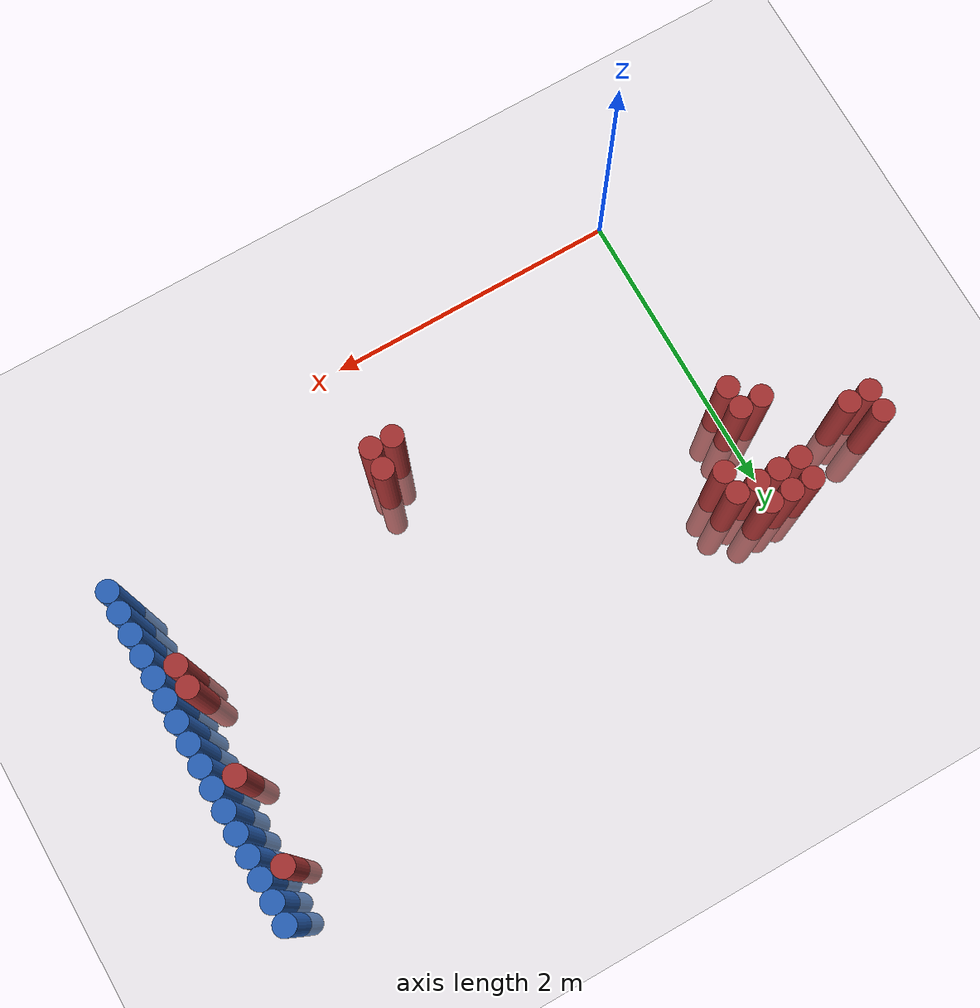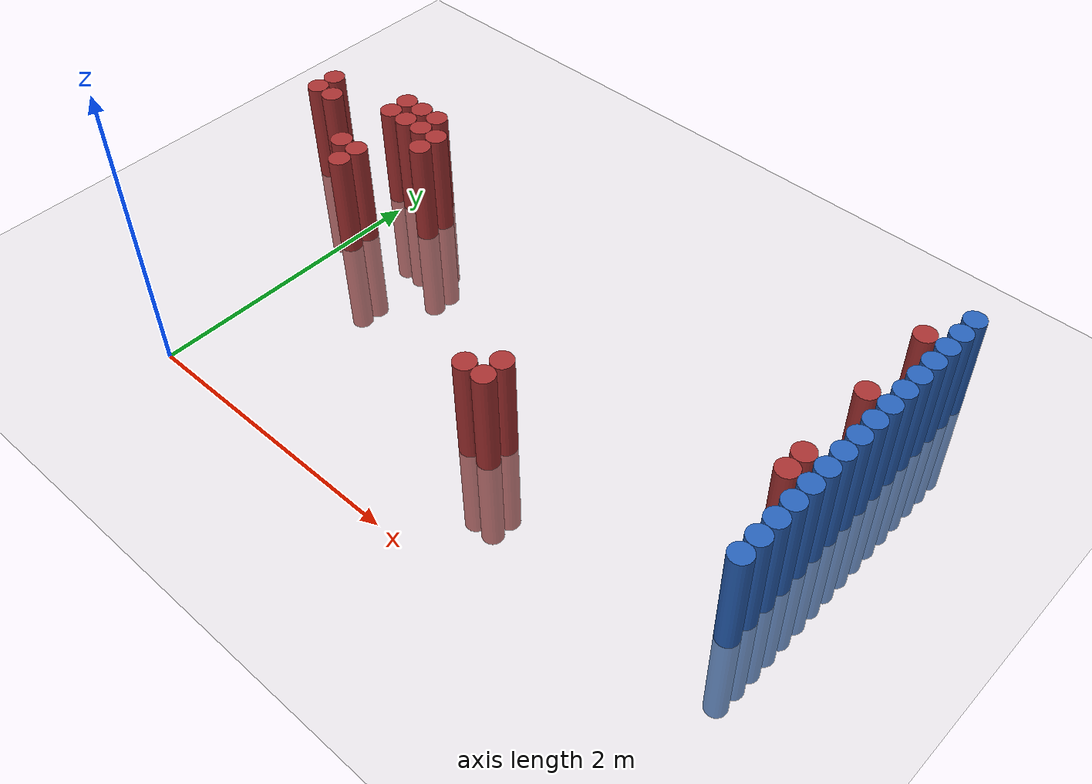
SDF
<sdf version="1.6">
 <world name="default">
  <model name="ground_plane">
   <static>1</static>
   <link name="link">
    <collision name="collision">
     <geometry><plane><normal>0 0 1</normal><size>100 100</size></plane></geometry>
     <surface><friction><ode><mu>100</mu><mu2>50</mu2></ode></friction></surface>
    </collision>
    <visual name="visual">
     <cast_shadows>0</cast_shadows>
     <geometry><plane><normal>0 0 1</normal><size>100 100</size></plane></geometry>
     <material>
      <script><uri>file://media/materials/scripts/gazebo.material</uri><name>Gazebo/Grey</name></script>
     </material>
    </visual>
   </link>
  </model>
  <model name="unit_cylinder_126">
   <static>1</static>
   <pose>3.925000 0.925000 0.000000 0.000000 0.000000 0.000000</pose>
   <link name="link">
    <inertial>
     <mass>1</mass>
     <inertia><ixx>0.145833</ixx><ixy>0</ixy><ixz>0</ixz><iyy>0.145833</iyy><iyz>0</iyz><izz>0.125</izz></inertia>
    </inertial>
    <collision name="collision">
     <geometry><cylinder><radius>0.075000</radius><length>1.5</length></cylinder></geometry>
    </collision>
    <visual name="visual">
     <geometry><cylinder><radius>0.075000</radius><length>1.5</length></cylinder></geometry>
     <material>
      <ambient>0.152000 0.379000 0.720000 1</ambient>
      <diffuse>0.152000 0.379000 0.720000 1</diffuse>
     </material>
     <material>
      <script><name>Gazebo/Grey</name><uri>file://media/materials/scripts/gazebo.material</uri></script>
     </material>
    </visual>
   </link>
  </model>
  <model name="unit_cylinder_128">
   <static>1</static>
   <pose>3.925000 1.075000 0.000000 0.000000 0.000000 0.000000</pose>
   <link name="link">
    <inertial>
     <mass>1</mass>
     <inertia><ixx>0.145833</ixx><ixy>0</ixy><ixz>0</ixz><iyy>0.145833</iyy><iyz>0</iyz><izz>0.125</izz></inertia>
    </inertial>
    <collision name="collision">
     <geometry><cylinder><radius>0.075000</radius><length>1.5</length></cylinder></geometry>
    </collision>
    <visual name="visual">
     <geometry><cylinder><radius>0.075000</radius><length>1.5</length></cylinder></geometry>
     <material>
      <ambient>0.152000 0.379000 0.720000 1</ambient>
      <diffuse>0.152000 0.379000 0.720000 1</diffuse>
     </material>
     <material>
      <script><name>Gazebo/Grey</name><uri>file://media/materials/scripts/gazebo.material</uri></script>
     </material>
    </visual>
   </link>
  </model>
  <model name="unit_cylinder_130">
   <static>1</static>
   <pose>3.925000 1.225000 0.000000 0.000000 0.000000 0.000000</pose>
   <link name="link">
    <inertial>
     <mass>1</mass>
     <inertia><ixx>0.145833</ixx><ixy>0</ixy><ixz>0</ixz><iyy>0.145833</iyy><iyz>0</iyz><izz>0.125</izz></inertia>
    </inertial>
    <collision name="collision">
     <geometry><cylinder><radius>0.075000</radius><length>1.5</length></cylinder></geometry>
    </collision>
    <visual name="visual">
     <geometry><cylinder><radius>0.075000</radius><length>1.5</length></cylinder></geometry>
     <material>
      <ambient>0.152000 0.379000 0.720000 1</ambient>
      <diffuse>0.152000 0.379000 0.720000 1</diffuse>
     </material>
     <material>
      <script><name>Gazebo/Grey</name><uri>file://media/materials/scripts/gazebo.material</uri></script>
     </material>
    </visual>
   </link>
  </model>
  <model name="unit_cylinder_132">
   <static>1</static>
   <pose>3.925000 1.375000 0.000000 0.000000 0.000000 0.000000</pose>
   <link name="link">
    <inertial>
     <mass>1</mass>
     <inertia><ixx>0.145833</ixx><ixy>0</ixy><ixz>0</ixz><iyy>0.145833</iyy><iyz>0</iyz><izz>0.125</izz></inertia>
    </inertial>
    <collision name="collision">
     <geometry><cylinder><radius>0.075000</radius><length>1.5</length></cylinder></geometry>
    </collision>
    <visual name="visual">
     <geometry><cylinder><radius>0.075000</radius><length>1.5</length></cylinder></geometry>
     <material>
      <ambient>0.152000 0.379000 0.720000 1</ambient>
      <diffuse>0.152000 0.379000 0.720000 1</diffuse>
     </material>
     <material>
      <script><name>Gazebo/Grey</name><uri>file://media/materials/scripts/gazebo.material</uri></script>
     </material>
    </visual>
   </link>
  </model>
  <model name="unit_cylinder_134">
   <static>1</static>
   <pose>3.925000 1.525000 0.000000 0.000000 0.000000 0.000000</pose>
   <link name="link">
    <inertial>
     <mass>1</mass>
     <inertia><ixx>0.145833</ixx><ixy>0</ixy><ixz>0</ixz><iyy>0.145833</iyy><iyz>0</iyz><izz>0.125</izz></inertia>
    </inertial>
    <collision name="collision">
     <geometry><cylinder><radius>0.075000</radius><length>1.5</length></cylinder></geometry>
    </collision>
    <visual name="visual">
     <geometry><cylinder><radius>0.075000</radius><length>1.5</length></cylinder></geometry>
     <material>
      <ambient>0.152000 0.379000 0.720000 1</ambient>
      <diffuse>0.152000 0.379000 0.720000 1</diffuse>
     </material>
     <material>
      <script><name>Gazebo/Grey</name><uri>file://media/materials/scripts/gazebo.material</uri></script>
     </material>
    </visual>
   </link>
  </model>
  <model name="unit_cylinder_136">
   <static>1</static>
   <pose>3.925000 1.675000 0.000000 0.000000 0.000000 0.000000</pose>
   <link name="link">
    <inertial>
     <mass>1</mass>
     <inertia><ixx>0.145833</ixx><ixy>0</ixy><ixz>0</ixz><iyy>0.145833</iyy><iyz>0</iyz><izz>0.125</izz></inertia>
    </inertial>
    <collision name="collision">
     <geometry><cylinder><radius>0.075000</radius><length>1.5</length></cylinder></geometry>
    </collision>
    <visual name="visual">
     <geometry><cylinder><radius>0.075000</radius><length>1.5</length></cylinder></geometry>
     <material>
      <ambient>0.152000 0.379000 0.720000 1</ambient>
      <diffuse>0.152000 0.379000 0.720000 1</diffuse>
     </material>
     <material>
      <script><name>Gazebo/Grey</name><uri>file://media/materials/scripts/gazebo.material</uri></script>
     </material>
    </visual>
   </link>
  </model>
  <model name="unit_cylinder_138">
   <static>1</static>
   <pose>3.925000 1.825000 0.000000 0.000000 0.000000 0.000000</pose>
   <link name="link">
    <inertial>
     <mass>1</mass>
     <inertia><ixx>0.145833</ixx><ixy>0</ixy><ixz>0</ixz><iyy>0.145833</iyy><iyz>0</iyz><izz>0.125</izz></inertia>
    </inertial>
    <collision name="collision">
     <geometry><cylinder><radius>0.075000</radius><length>1.5</length></cylinder></geometry>
    </collision>
    <visual name="visual">
     <geometry><cylinder><radius>0.075000</radius><length>1.5</length></cylinder></geometry>
     <material>
      <ambient>0.152000 0.379000 0.720000 1</ambient>
      <diffuse>0.152000 0.379000 0.720000 1</diffuse>
     </material>
     <material>
      <script><name>Gazebo/Grey</name><uri>file://media/materials/scripts/gazebo.material</uri></script>
     </material>
    </visual>
   </link>
  </model>
  <model name="unit_cylinder_140">
   <static>1</static>
   <pose>3.925000 1.975000 0.000000 0.000000 0.000000 0.000000</pose>
   <link name="link">
    <inertial>
     <mass>1</mass>
     <inertia><ixx>0.145833</ixx><ixy>0</ixy><ixz>0</ixz><iyy>0.145833</iyy><iyz>0</iyz><izz>0.125</izz></inertia>
    </inertial>
    <collision name="collision">
     <geometry><cylinder><radius>0.075000</radius><length>1.5</length></cylinder></geometry>
    </collision>
    <visual name="visual">
     <geometry><cylinder><radius>0.075000</radius><length>1.5</length></cylinder></geometry>
     <material>
      <ambient>0.152000 0.379000 0.720000 1</ambient>
      <diffuse>0.152000 0.379000 0.720000 1</diffuse>
     </material>
     <material>
      <script><name>Gazebo/Grey</name><uri>file://media/materials/scripts/gazebo.material</uri></script>
     </material>
    </visual>
   </link>
  </model>
  <model name="unit_cylinder_142">
   <static>1</static>
   <pose>3.925000 2.125000 0.000000 0.000000 0.000000 0.000000</pose>
   <link name="link">
    <inertial>
     <mass>1</mass>
     <inertia><ixx>0.145833</ixx><ixy>0</ixy><ixz>0</ixz><iyy>0.145833</iyy><iyz>0</iyz><izz>0.125</izz></inertia>
    </inertial>
    <collision name="collision">
     <geometry><cylinder><radius>0.075000</radius><length>1.5</length></cylinder></geometry>
    </collision>
    <visual name="visual">
     <geometry><cylinder><radius>0.075000</radius><length>1.5</length></cylinder></geometry>
     <material>
      <ambient>0.152000 0.379000 0.720000 1</ambient>
      <diffuse>0.152000 0.379000 0.720000 1</diffuse>
     </material>
     <material>
      <script><name>Gazebo/Grey</name><uri>file://media/materials/scripts/gazebo.material</uri></script>
     </material>
    </visual>
   </link>
  </model>
  <model name="unit_cylinder_144">
   <static>1</static>
   <pose>3.925000 2.275000 0.000000 0.000000 0.000000 0.000000</pose>
   <link name="link">
    <inertial>
     <mass>1</mass>
     <inertia><ixx>0.145833</ixx><ixy>0</ixy><ixz>0</ixz><iyy>0.145833</iyy><iyz>0</iyz><izz>0.125</izz></inertia>
    </inertial>
    <collision name="collision">
     <geometry><cylinder><radius>0.075000</radius><length>1.5</length></cylinder></geometry>
    </collision>
    <visual name="visual">
     <geometry><cylinder><radius>0.075000</radius><length>1.5</length></cylinder></geometry>
     <material>
      <ambient>0.152000 0.379000 0.720000 1</ambient>
      <diffuse>0.152000 0.379000 0.720000 1</diffuse>
     </material>
     <material>
      <script><name>Gazebo/Grey</name><uri>file://media/materials/scripts/gazebo.material</uri></script>
     </material>
    </visual>
   </link>
  </model>
  <model name="unit_cylinder_146">
   <static>1</static>
   <pose>3.925000 2.425000 0.000000 0.000000 0.000000 0.000000</pose>
   <link name="link">
    <inertial>
     <mass>1</mass>
     <inertia><ixx>0.145833</ixx><ixy>0</ixy><ixz>0</ixz><iyy>0.145833</iyy><iyz>0</iyz><izz>0.125</izz></inertia>
    </inertial>
    <collision name="collision">
     <geometry><cylinder><radius>0.075000</radius><length>1.5</length></cylinder></geometry>
    </collision>
    <visual name="visual">
     <geometry><cylinder><radius>0.075000</radius><length>1.5</length></cylinder></geometry>
     <material>
      <ambient>0.152000 0.379000 0.720000 1</ambient>
      <diffuse>0.152000 0.379000 0.720000 1</diffuse>
     </material>
     <material>
      <script><name>Gazebo/Grey</name><uri>file://media/materials/scripts/gazebo.material</uri></script>
     </material>
    </visual>
   </link>
  </model>
  <model name="unit_cylinder_148">
   <static>1</static>
   <pose>3.925000 2.575000 0.000000 0.000000 0.000000 0.000000</pose>
   <link name="link">
    <inertial>
     <mass>1</mass>
     <inertia><ixx>0.145833</ixx><ixy>0</ixy><ixz>0</ixz><iyy>0.145833</iyy><iyz>0</iyz><izz>0.125</izz></inertia>
    </inertial>
    <collision name="collision">
     <geometry><cylinder><radius>0.075000</radius><length>1.5</length></cylinder></geometry>
    </collision>
    <visual name="visual">
     <geometry><cylinder><radius>0.075000</radius><length>1.5</length></cylinder></geometry>
     <material>
      <ambient>0.152000 0.379000 0.720000 1</ambient>
      <diffuse>0.152000 0.379000 0.720000 1</diffuse>
     </material>
     <material>
      <script><name>Gazebo/Grey</name><uri>file://media/materials/scripts/gazebo.material</uri></script>
     </material>
    </visual>
   </link>
  </model>
  <model name="unit_cylinder_150">
   <static>1</static>
   <pose>3.925000 2.725000 0.000000 0.000000 0.000000 0.000000</pose>
   <link name="link">
    <inertial>
     <mass>1</mass>
     <inertia><ixx>0.145833</ixx><ixy>0</ixy><ixz>0</ixz><iyy>0.145833</iyy><iyz>0</iyz><izz>0.125</izz></inertia>
    </inertial>
    <collision name="collision">
     <geometry><cylinder><radius>0.075000</radius><length>1.5</length></cylinder></geometry>
    </collision>
    <visual name="visual">
     <geometry><cylinder><radius>0.075000</radius><length>1.5</length></cylinder></geometry>
     <material>
      <ambient>0.152000 0.379000 0.720000 1</ambient>
      <diffuse>0.152000 0.379000 0.720000 1</diffuse>
     </material>
     <material>
      <script><name>Gazebo/Grey</name><uri>file://media/materials/scripts/gazebo.material</uri></script>
     </material>
    </visual>
   </link>
  </model>
  <model name="unit_cylinder_152">
   <static>1</static>
   <pose>3.925000 2.875000 0.000000 0.000000 0.000000 0.000000</pose>
   <link name="link">
    <inertial>
     <mass>1</mass>
     <inertia><ixx>0.145833</ixx><ixy>0</ixy><ixz>0</ixz><iyy>0.145833</iyy><iyz>0</iyz><izz>0.125</izz></inertia>
    </inertial>
    <collision name="collision">
     <geometry><cylinder><radius>0.075000</radius><length>1.5</length></cylinder></geometry>
    </collision>
    <visual name="visual">
     <geometry><cylinder><radius>0.075000</radius><length>1.5</length></cylinder></geometry>
     <material>
      <ambient>0.152000 0.379000 0.720000 1</ambient>
      <diffuse>0.152000 0.379000 0.720000 1</diffuse>
     </material>
     <material>
      <script><name>Gazebo/Grey</name><uri>file://media/materials/scripts/gazebo.material</uri></script>
     </material>
    </visual>
   </link>
  </model>
  <model name="unit_cylinder_154">
   <static>1</static>
   <pose>3.925000 3.025000 0.000000 0.000000 0.000000 0.000000</pose>
   <link name="link">
    <inertial>
     <mass>1</mass>
     <inertia><ixx>0.145833</ixx><ixy>0</ixy><ixz>0</ixz><iyy>0.145833</iyy><iyz>0</iyz><izz>0.125</izz></inertia>
    </inertial>
    <collision name="collision">
     <geometry><cylinder><radius>0.075000</radius><length>1.5</length></cylinder></geometry>
    </collision>
    <visual name="visual">
     <geometry><cylinder><radius>0.075000</radius><length>1.5</length></cylinder></geometry>
     <material>
      <ambient>0.152000 0.379000 0.720000 1</ambient>
      <diffuse>0.152000 0.379000 0.720000 1</diffuse>
     </material>
     <material>
      <script><name>Gazebo/Grey</name><uri>file://media/materials/scripts/gazebo.material</uri></script>
     </material>
    </visual>
   </link>
  </model>
  <model name="unit_cylinder_311">
   <static>1</static>
   <pose>-0.725000 1.975000 0.000000 0.000000 0.000000 0.000000</pose>
   <link name="link">
    <inertial>
     <mass>1</mass>
     <inertia><ixx>0.145833</ixx><ixy>0</ixy><ixz>0</ixz><iyy>0.145833</iyy><iyz>0</iyz><izz>0.125</izz></inertia>
    </inertial>
    <collision name="collision">
     <geometry><cylinder><radius>0.075000</radius><length>1.5</length></cylinder></geometry>
    </collision>
    <visual name="visual">
     <geometry><cylinder><radius>0.075000</radius><length>1.5</length></cylinder></geometry>
     <material>
      <ambient>0.648000 0.192000 0.192000 1</ambient>
      <diffuse>0.648000 0.192000 0.192000 1</diffuse>
     </material>
     <material>
      <script><name>Gazebo/Grey</name><uri>file://media/materials/scripts/gazebo.material</uri></script>
     </material>
    </visual>
   </link>
  </model>
  <model name="unit_cylinder_312">
   <static>1</static>
   <pose>-0.725000 2.125000 0.000000 0.000000 0.000000 0.000000</pose>
   <link name="link">
    <inertial>
     <mass>1</mass>
     <inertia><ixx>0.145833</ixx><ixy>0</ixy><ixz>0</ixz><iyy>0.145833</iyy><iyz>0</iyz><izz>0.125</izz></inertia>
    </inertial>
    <collision name="collision">
     <geometry><cylinder><radius>0.075000</radius><length>1.5</length></cylinder></geometry>
    </collision>
    <visual name="visual">
     <geometry><cylinder><radius>0.075000</radius><length>1.5</length></cylinder></geometry>
     <material>
      <ambient>0.648000 0.192000 0.192000 1</ambient>
      <diffuse>0.648000 0.192000 0.192000 1</diffuse>
     </material>
     <material>
      <script><name>Gazebo/Grey</name><uri>file://media/materials/scripts/gazebo.material</uri></script>
     </material>
    </visual>
   </link>
  </model>
  <model name="unit_cylinder_313">
   <static>1</static>
   <pose>-0.575000 1.975000 0.000000 0.000000 0.000000 0.000000</pose>
   <link name="link">
    <inertial>
     <mass>1</mass>
     <inertia><ixx>0.145833</ixx><ixy>0</ixy><ixz>0</ixz><iyy>0.145833</iyy><iyz>0</iyz><izz>0.125</izz></inertia>
    </inertial>
    <collision name="collision">
     <geometry><cylinder><radius>0.075000</radius><length>1.5</length></cylinder></geometry>
    </collision>
    <visual name="visual">
     <geometry><cylinder><radius>0.075000</radius><length>1.5</length></cylinder></geometry>
     <material>
      <ambient>0.648000 0.192000 0.192000 1</ambient>
      <diffuse>0.648000 0.192000 0.192000 1</diffuse>
     </material>
     <material>
      <script><name>Gazebo/Grey</name><uri>file://media/materials/scripts/gazebo.material</uri></script>
     </material>
    </visual>
   </link>
  </model>
  <model name="unit_cylinder_318">
   <static>1</static>
   <pose>-0.125000 1.675000 0.000000 0.000000 0.000000 0.000000</pose>
   <link name="link">
    <inertial>
     <mass>1</mass>
     <inertia><ixx>0.145833</ixx><ixy>0</ixy><ixz>0</ixz><iyy>0.145833</iyy><iyz>0</iyz><izz>0.125</izz></inertia>
    </inertial>
    <collision name="collision">
     <geometry><cylinder><radius>0.075000</radius><length>1.5</length></cylinder></geometry>
    </collision>
    <visual name="visual">
     <geometry><cylinder><radius>0.075000</radius><length>1.5</length></cylinder></geometry>
     <material>
      <ambient>0.648000 0.192000 0.192000 1</ambient>
      <diffuse>0.648000 0.192000 0.192000 1</diffuse>
     </material>
     <material>
      <script><name>Gazebo/Grey</name><uri>file://media/materials/scripts/gazebo.material</uri></script>
     </material>
    </visual>
   </link>
  </model>
  <model name="unit_cylinder_319">
   <static>1</static>
   <pose>-0.125000 2.125000 0.000000 0.000000 0.000000 0.000000</pose>
   <link name="link">
    <inertial>
     <mass>1</mass>
     <inertia><ixx>0.145833</ixx><ixy>0</ixy><ixz>0</ixz><iyy>0.145833</iyy><iyz>0</iyz><izz>0.125</izz></inertia>
    </inertial>
    <collision name="collision">
     <geometry><cylinder><radius>0.075000</radius><length>1.5</length></cylinder></geometry>
    </collision>
    <visual name="visual">
     <geometry><cylinder><radius>0.075000</radius><length>1.5</length></cylinder></geometry>
     <material>
      <ambient>0.648000 0.192000 0.192000 1</ambient>
      <diffuse>0.648000 0.192000 0.192000 1</diffuse>
     </material>
     <material>
      <script><name>Gazebo/Grey</name><uri>file://media/materials/scripts/gazebo.material</uri></script>
     </material>
    </visual>
   </link>
  </model>
  <model name="unit_cylinder_320">
   <static>1</static>
   <pose>-0.125000 2.275000 0.000000 0.000000 0.000000 0.000000</pose>
   <link name="link">
    <inertial>
     <mass>1</mass>
     <inertia><ixx>0.145833</ixx><ixy>0</ixy><ixz>0</ixz><iyy>0.145833</iyy><iyz>0</iyz><izz>0.125</izz></inertia>
    </inertial>
    <collision name="collision">
     <geometry><cylinder><radius>0.075000</radius><length>1.5</length></cylinder></geometry>
    </collision>
    <visual name="visual">
     <geometry><cylinder><radius>0.075000</radius><length>1.5</length></cylinder></geometry>
     <material>
      <ambient>0.648000 0.192000 0.192000 1</ambient>
      <diffuse>0.648000 0.192000 0.192000 1</diffuse>
     </material>
     <material>
      <script><name>Gazebo/Grey</name><uri>file://media/materials/scripts/gazebo.material</uri></script>
     </material>
    </visual>
   </link>
  </model>
  <model name="unit_cylinder_323">
   <static>1</static>
   <pose>0.025000 1.525000 0.000000 0.000000 0.000000 0.000000</pose>
   <link name="link">
    <inertial>
     <mass>1</mass>
     <inertia><ixx>0.145833</ixx><ixy>0</ixy><ixz>0</ixz><iyy>0.145833</iyy><iyz>0</iyz><izz>0.125</izz></inertia>
    </inertial>
    <collision name="collision">
     <geometry><cylinder><radius>0.075000</radius><length>1.5</length></cylinder></geometry>
    </collision>
    <visual name="visual">
     <geometry><cylinder><radius>0.075000</radius><length>1.5</length></cylinder></geometry>
     <material>
      <ambient>0.648000 0.192000 0.192000 1</ambient>
      <diffuse>0.648000 0.192000 0.192000 1</diffuse>
     </material>
     <material>
      <script><name>Gazebo/Grey</name><uri>file://media/materials/scripts/gazebo.material</uri></script>
     </material>
    </visual>
   </link>
  </model>
  <model name="unit_cylinder_324">
   <static>1</static>
   <pose>0.025000 1.675000 0.000000 0.000000 0.000000 0.000000</pose>
   <link name="link">
    <inertial>
     <mass>1</mass>
     <inertia><ixx>0.145833</ixx><ixy>0</ixy><ixz>0</ixz><iyy>0.145833</iyy><iyz>0</iyz><izz>0.125</izz></inertia>
    </inertial>
    <collision name="collision">
     <geometry><cylinder><radius>0.075000</radius><length>1.5</length></cylinder></geometry>
    </collision>
    <visual name="visual">
     <geometry><cylinder><radius>0.075000</radius><length>1.5</length></cylinder></geometry>
     <material>
      <ambient>0.648000 0.192000 0.192000 1</ambient>
      <diffuse>0.648000 0.192000 0.192000 1</diffuse>
     </material>
     <material>
      <script><name>Gazebo/Grey</name><uri>file://media/materials/scripts/gazebo.material</uri></script>
     </material>
    </visual>
   </link>
  </model>
  <model name="unit_cylinder_325">
   <static>1</static>
   <pose>0.025000 2.125000 0.000000 0.000000 0.000000 0.000000</pose>
   <link name="link">
    <inertial>
     <mass>1</mass>
     <inertia><ixx>0.145833</ixx><ixy>0</ixy><ixz>0</ixz><iyy>0.145833</iyy><iyz>0</iyz><izz>0.125</izz></inertia>
    </inertial>
    <collision name="collision">
     <geometry><cylinder><radius>0.075000</radius><length>1.5</length></cylinder></geometry>
    </collision>
    <visual name="visual">
     <geometry><cylinder><radius>0.075000</radius><length>1.5</length></cylinder></geometry>
     <material>
      <ambient>0.648000 0.192000 0.192000 1</ambient>
      <diffuse>0.648000 0.192000 0.192000 1</diffuse>
     </material>
     <material>
      <script><name>Gazebo/Grey</name><uri>file://media/materials/scripts/gazebo.material</uri></script>
     </material>
    </visual>
   </link>
  </model>
  <model name="unit_cylinder_326">
   <static>1</static>
   <pose>0.025000 2.275000 0.000000 0.000000 0.000000 0.000000</pose>
   <link name="link">
    <inertial>
     <mass>1</mass>
     <inertia><ixx>0.145833</ixx><ixy>0</ixy><ixz>0</ixz><iyy>0.145833</iyy><iyz>0</iyz><izz>0.125</izz></inertia>
    </inertial>
    <collision name="collision">
     <geometry><cylinder><radius>0.075000</radius><length>1.5</length></cylinder></geometry>
    </collision>
    <visual name="visual">
     <geometry><cylinder><radius>0.075000</radius><length>1.5</length></cylinder></geometry>
     <material>
      <ambient>0.648000 0.192000 0.192000 1</ambient>
      <diffuse>0.648000 0.192000 0.192000 1</diffuse>
     </material>
     <material>
      <script><name>Gazebo/Grey</name><uri>file://media/materials/scripts/gazebo.material</uri></script>
     </material>
    </visual>
   </link>
  </model>
  <model name="unit_cylinder_327">
   <static>1</static>
   <pose>0.175000 2.125000 0.000000 0.000000 0.000000 0.000000</pose>
   <link name="link">
    <inertial>
     <mass>1</mass>
     <inertia><ixx>0.145833</ixx><ixy>0</ixy><ixz>0</ixz><iyy>0.145833</iyy><iyz>0</iyz><izz>0.125</izz></inertia>
    </inertial>
    <collision name="collision">
     <geometry><cylinder><radius>0.075000</radius><length>1.5</length></cylinder></geometry>
    </collision>
    <visual name="visual">
     <geometry><cylinder><radius>0.075000</radius><length>1.5</length></cylinder></geometry>
     <material>
      <ambient>0.648000 0.192000 0.192000 1</ambient>
      <diffuse>0.648000 0.192000 0.192000 1</diffuse>
     </material>
     <material>
      <script><name>Gazebo/Grey</name><uri>file://media/materials/scripts/gazebo.material</uri></script>
     </material>
    </visual>
   </link>
  </model>
  <model name="unit_cylinder_328">
   <static>1</static>
   <pose>0.175000 2.275000 0.000000 0.000000 0.000000 0.000000</pose>
   <link name="link">
    <inertial>
     <mass>1</mass>
     <inertia><ixx>0.145833</ixx><ixy>0</ixy><ixz>0</ixz><iyy>0.145833</iyy><iyz>0</iyz><izz>0.125</izz></inertia>
    </inertial>
    <collision name="collision">
     <geometry><cylinder><radius>0.075000</radius><length>1.5</length></cylinder></geometry>
    </collision>
    <visual name="visual">
     <geometry><cylinder><radius>0.075000</radius><length>1.5</length></cylinder></geometry>
     <material>
      <ambient>0.648000 0.192000 0.192000 1</ambient>
      <diffuse>0.648000 0.192000 0.192000 1</diffuse>
     </material>
     <material>
      <script><name>Gazebo/Grey</name><uri>file://media/materials/scripts/gazebo.material</uri></script>
     </material>
    </visual>
   </link>
  </model>
  <model name="unit_cylinder_329">
   <static>1</static>
   <pose>0.325000 1.975000 0.000000 0.000000 0.000000 0.000000</pose>
   <link name="link">
    <inertial>
     <mass>1</mass>
     <inertia><ixx>0.145833</ixx><ixy>0</ixy><ixz>0</ixz><iyy>0.145833</iyy><iyz>0</iyz><izz>0.125</izz></inertia>
    </inertial>
    <collision name="collision">
     <geometry><cylinder><radius>0.075000</radius><length>1.5</length></cylinder></geometry>
    </collision>
    <visual name="visual">
     <geometry><cylinder><radius>0.075000</radius><length>1.5</length></cylinder></geometry>
     <material>
      <ambient>0.648000 0.192000 0.192000 1</ambient>
      <diffuse>0.648000 0.192000 0.192000 1</diffuse>
     </material>
     <material>
      <script><name>Gazebo/Grey</name><uri>file://media/materials/scripts/gazebo.material</uri></script>
     </material>
    </visual>
   </link>
  </model>
  <model name="unit_cylinder_330">
   <static>1</static>
   <pose>0.325000 2.125000 0.000000 0.000000 0.000000 0.000000</pose>
   <link name="link">
    <inertial>
     <mass>1</mass>
     <inertia><ixx>0.145833</ixx><ixy>0</ixy><ixz>0</ixz><iyy>0.145833</iyy><iyz>0</iyz><izz>0.125</izz></inertia>
    </inertial>
    <collision name="collision">
     <geometry><cylinder><radius>0.075000</radius><length>1.5</length></cylinder></geometry>
    </collision>
    <visual name="visual">
     <geometry><cylinder><radius>0.075000</radius><length>1.5</length></cylinder></geometry>
     <material>
      <ambient>0.648000 0.192000 0.192000 1</ambient>
      <diffuse>0.648000 0.192000 0.192000 1</diffuse>
     </material>
     <material>
      <script><name>Gazebo/Grey</name><uri>file://media/materials/scripts/gazebo.material</uri></script>
     </material>
    </visual>
   </link>
  </model>
  <model name="unit_cylinder_340">
   <static>1</static>
   <pose>1.975000 0.775000 0.000000 0.000000 0.000000 0.000000</pose>
   <link name="link">
    <inertial>
     <mass>1</mass>
     <inertia><ixx>0.145833</ixx><ixy>0</ixy><ixz>0</ixz><iyy>0.145833</iyy><iyz>0</iyz><izz>0.125</izz></inertia>
    </inertial>
    <collision name="collision">
     <geometry><cylinder><radius>0.075000</radius><length>1.5</length></cylinder></geometry>
    </collision>
    <visual name="visual">
     <geometry><cylinder><radius>0.075000</radius><length>1.5</length></cylinder></geometry>
     <material>
      <ambient>0.648000 0.192000 0.192000 1</ambient>
      <diffuse>0.648000 0.192000 0.192000 1</diffuse>
     </material>
     <material>
      <script><name>Gazebo/Grey</name><uri>file://media/materials/scripts/gazebo.material</uri></script>
     </material>
    </visual>
   </link>
  </model>
  <model name="unit_cylinder_341">
   <static>1</static>
   <pose>2.125000 0.775000 0.000000 0.000000 0.000000 0.000000</pose>
   <link name="link">
    <inertial>
     <mass>1</mass>
     <inertia><ixx>0.145833</ixx><ixy>0</ixy><ixz>0</ixz><iyy>0.145833</iyy><iyz>0</iyz><izz>0.125</izz></inertia>
    </inertial>
    <collision name="collision">
     <geometry><cylinder><radius>0.075000</radius><length>1.5</length></cylinder></geometry>
    </collision>
    <visual name="visual">
     <geometry><cylinder><radius>0.075000</radius><length>1.5</length></cylinder></geometry>
     <material>
      <ambient>0.648000 0.192000 0.192000 1</ambient>
      <diffuse>0.648000 0.192000 0.192000 1</diffuse>
     </material>
     <material>
      <script><name>Gazebo/Grey</name><uri>file://media/materials/scripts/gazebo.material</uri></script>
     </material>
    </visual>
   </link>
  </model>
  <model name="unit_cylinder_342">
   <static>1</static>
   <pose>2.125000 0.925000 0.000000 0.000000 0.000000 0.000000</pose>
   <link name="link">
    <inertial>
     <mass>1</mass>
     <inertia><ixx>0.145833</ixx><ixy>0</ixy><ixz>0</ixz><iyy>0.145833</iyy><iyz>0</iyz><izz>0.125</izz></inertia>
    </inertial>
    <collision name="collision">
     <geometry><cylinder><radius>0.075000</radius><length>1.5</length></cylinder></geometry>
    </collision>
    <visual name="visual">
     <geometry><cylinder><radius>0.075000</radius><length>1.5</length></cylinder></geometry>
     <material>
      <ambient>0.648000 0.192000 0.192000 1</ambient>
      <diffuse>0.648000 0.192000 0.192000 1</diffuse>
     </material>
     <material>
      <script><name>Gazebo/Grey</name><uri>file://media/materials/scripts/gazebo.material</uri></script>
     </material>
    </visual>
   </link>
  </model>
  <model name="unit_cylinder_354">
   <static>1</static>
   <pose>3.775000 1.375000 0.000000 0.000000 0.000000 0.000000</pose>
   <link name="link">
    <inertial>
     <mass>1</mass>
     <inertia><ixx>0.145833</ixx><ixy>0</ixy><ixz>0</ixz><iyy>0.145833</iyy><iyz>0</iyz><izz>0.125</izz></inertia>
    </inertial>
    <collision name="collision">
     <geometry><cylinder><radius>0.075000</radius><length>1.5</length></cylinder></geometry>
    </collision>
    <visual name="visual">
     <geometry><cylinder><radius>0.075000</radius><length>1.5</length></cylinder></geometry>
     <material>
      <ambient>0.648000 0.192000 0.192000 1</ambient>
      <diffuse>0.648000 0.192000 0.192000 1</diffuse>
     </material>
     <material>
      <script><name>Gazebo/Grey</name><uri>file://media/materials/scripts/gazebo.material</uri></script>
     </material>
    </visual>
   </link>
  </model>
  <model name="unit_cylinder_355">
   <static>1</static>
   <pose>3.775000 1.525000 0.000000 0.000000 0.000000 0.000000</pose>
   <link name="link">
    <inertial>
     <mass>1</mass>
     <inertia><ixx>0.145833</ixx><ixy>0</ixy><ixz>0</ixz><iyy>0.145833</iyy><iyz>0</iyz><izz>0.125</izz></inertia>
    </inertial>
    <collision name="collision">
     <geometry><cylinder><radius>0.075000</radius><length>1.5</length></cylinder></geometry>
    </collision>
    <visual name="visual">
     <geometry><cylinder><radius>0.075000</radius><length>1.5</length></cylinder></geometry>
     <material>
      <ambient>0.648000 0.192000 0.192000 1</ambient>
      <diffuse>0.648000 0.192000 0.192000 1</diffuse>
     </material>
     <material>
      <script><name>Gazebo/Grey</name><uri>file://media/materials/scripts/gazebo.material</uri></script>
     </material>
    </visual>
   </link>
  </model>
  <model name="unit_cylinder_356">
   <static>1</static>
   <pose>3.775000 2.125000 0.000000 0.000000 0.000000 0.000000</pose>
   <link name="link">
    <inertial>
     <mass>1</mass>
     <inertia><ixx>0.145833</ixx><ixy>0</ixy><ixz>0</ixz><iyy>0.145833</iyy><iyz>0</iyz><izz>0.125</izz></inertia>
    </inertial>
    <collision name="collision">
     <geometry><cylinder><radius>0.075000</radius><length>1.5</length></cylinder></geometry>
    </collision>
    <visual name="visual">
     <geometry><cylinder><radius>0.075000</radius><length>1.5</length></cylinder></geometry>
     <material>
      <ambient>0.648000 0.192000 0.192000 1</ambient>
      <diffuse>0.648000 0.192000 0.192000 1</diffuse>
     </material>
     <material>
      <script><name>Gazebo/Grey</name><uri>file://media/materials/scripts/gazebo.material</uri></script>
     </material>
    </visual>
   </link>
  </model>
  <model name="unit_cylinder_357">
   <static>1</static>
   <pose>3.775000 2.725000 0.000000 0.000000 0.000000 0.000000</pose>
   <link name="link">
    <inertial>
     <mass>1</mass>
     <inertia><ixx>0.145833</ixx><ixy>0</ixy><ixz>0</ixz><iyy>0.145833</iyy><iyz>0</iyz><izz>0.125</izz></inertia>
    </inertial>
    <collision name="collision">
     <geometry><cylinder><radius>0.075000</radius><length>1.5</length></cylinder></geometry>
    </collision>
    <visual name="visual">
     <geometry><cylinder><radius>0.075000</radius><length>1.5</length></cylinder></geometry>
     <material>
      <ambient>0.648000 0.192000 0.192000 1</ambient>
      <diffuse>0.648000 0.192000 0.192000 1</diffuse>
     </material>
     <material>
      <script><name>Gazebo/Grey</name><uri>file://media/materials/scripts/gazebo.material</uri></script>
     </material>
    </visual>
   </link>
  </model>
  <model name="unit_cylinder_380">
   <static>1</static>
   <pose>3.925000 0.775000 0.000000 0.000000 0.000000 0.000000</pose>
   <link name="link">
    <inertial>
     <mass>1</mass>
     <inertia><ixx>0.145833</ixx><ixy>0</ixy><ixz>0</ixz><iyy>0.145833</iyy><iyz>0</iyz><izz>0.125</izz></inertia>
    </inertial>
    <collision name="collision">
     <geometry><cylinder><radius>0.075000</radius><length>1.5</length></cylinder></geometry>
    </collision>
    <visual name="visual">
     <geometry><cylinder><radius>0.075000</radius><length>1.5</length></cylinder></geometry>
     <material>
      <ambient>0.152000 0.379000 0.720000 1</ambient>
      <diffuse>0.152000 0.379000 0.720000 1</diffuse>
     </material>
     <material>
      <script><name>Gazebo/Grey</name><uri>file://media/materials/scripts/gazebo.material</uri></script>
     </material>
    </visual>
   </link>
  </model>
  <model name="unit_cylinder_381">
   <static>1</static>
   <pose>3.925000 0.925000 0.000000 0.000000 0.000000 0.000000</pose>
   <link name="link">
    <inertial>
     <mass>1</mass>
     <inertia><ixx>0.145833</ixx><ixy>0</ixy><ixz>0</ixz><iyy>0.145833</iyy><iyz>0</iyz><izz>0.125</izz></inertia>
    </inertial>
    <collision name="collision">
     <geometry><cylinder><radius>0.075000</radius><length>1.5</length></cylinder></geometry>
    </collision>
    <visual name="visual">
     <geometry><cylinder><radius>0.075000</radius><length>1.5</length></cylinder></geometry>
     <material>
      <ambient>0.152000 0.379000 0.720000 1</ambient>
      <diffuse>0.152000 0.379000 0.720000 1</diffuse>
     </material>
     <material>
      <script><name>Gazebo/Grey</name><uri>file://media/materials/scripts/gazebo.material</uri></script>
     </material>
    </visual>
   </link>
  </model>
  <model name="unit_cylinder_382">
   <static>1</static>
   <pose>3.925000 1.075000 0.000000 0.000000 0.000000 0.000000</pose>
   <link name="link">
    <inertial>
     <mass>1</mass>
     <inertia><ixx>0.145833</ixx><ixy>0</ixy><ixz>0</ixz><iyy>0.145833</iyy><iyz>0</iyz><izz>0.125</izz></inertia>
    </inertial>
    <collision name="collision">
     <geometry><cylinder><radius>0.075000</radius><length>1.5</length></cylinder></geometry>
    </collision>
    <visual name="visual">
     <geometry><cylinder><radius>0.075000</radius><length>1.5</length></cylinder></geometry>
     <material>
      <ambient>0.152000 0.379000 0.720000 1</ambient>
      <diffuse>0.152000 0.379000 0.720000 1</diffuse>
     </material>
     <material>
      <script><name>Gazebo/Grey</name><uri>file://media/materials/scripts/gazebo.material</uri></script>
     </material>
    </visual>
   </link>
  </model>
  <model name="unit_cylinder_383">
   <static>1</static>
   <pose>3.925000 1.225000 0.000000 0.000000 0.000000 0.000000</pose>
   <link name="link">
    <inertial>
     <mass>1</mass>
     <inertia><ixx>0.145833</ixx><ixy>0</ixy><ixz>0</ixz><iyy>0.145833</iyy><iyz>0</iyz><izz>0.125</izz></inertia>
    </inertial>
    <collision name="collision">
     <geometry><cylinder><radius>0.075000</radius><length>1.5</length></cylinder></geometry>
    </collision>
    <visual name="visual">
     <geometry><cylinder><radius>0.075000</radius><length>1.5</length></cylinder></geometry>
     <material>
      <ambient>0.152000 0.379000 0.720000 1</ambient>
      <diffuse>0.152000 0.379000 0.720000 1</diffuse>
     </material>
     <material>
      <script><name>Gazebo/Grey</name><uri>file://media/materials/scripts/gazebo.material</uri></script>
     </material>
    </visual>
   </link>
  </model>
  <model name="unit_cylinder_384">
   <static>1</static>
   <pose>3.925000 1.375000 0.000000 0.000000 0.000000 0.000000</pose>
   <link name="link">
    <inertial>
     <mass>1</mass>
     <inertia><ixx>0.145833</ixx><ixy>0</ixy><ixz>0</ixz><iyy>0.145833</iyy><iyz>0</iyz><izz>0.125</izz></inertia>
    </inertial>
    <collision name="collision">
     <geometry><cylinder><radius>0.075000</radius><length>1.5</length></cylinder></geometry>
    </collision>
    <visual name="visual">
     <geometry><cylinder><radius>0.075000</radius><length>1.5</length></cylinder></geometry>
     <material>
      <ambient>0.152000 0.379000 0.720000 1</ambient>
      <diffuse>0.152000 0.379000 0.720000 1</diffuse>
     </material>
     <material>
      <script><name>Gazebo/Grey</name><uri>file://media/materials/scripts/gazebo.material</uri></script>
     </material>
    </visual>
   </link>
  </model>
  <model name="unit_cylinder_385">
   <static>1</static>
   <pose>3.925000 1.525000 0.000000 0.000000 0.000000 0.000000</pose>
   <link name="link">
    <inertial>
     <mass>1</mass>
     <inertia><ixx>0.145833</ixx><ixy>0</ixy><ixz>0</ixz><iyy>0.145833</iyy><iyz>0</iyz><izz>0.125</izz></inertia>
    </inertial>
    <collision name="collision">
     <geometry><cylinder><radius>0.075000</radius><length>1.5</length></cylinder></geometry>
    </collision>
    <visual name="visual">
     <geometry><cylinder><radius>0.075000</radius><length>1.5</length></cylinder></geometry>
     <material>
      <ambient>0.152000 0.379000 0.720000 1</ambient>
      <diffuse>0.152000 0.379000 0.720000 1</diffuse>
     </material>
     <material>
      <script><name>Gazebo/Grey</name><uri>file://media/materials/scripts/gazebo.material</uri></script>
     </material>
    </visual>
   </link>
  </model>
  <model name="unit_cylinder_386">
   <static>1</static>
   <pose>3.925000 1.675000 0.000000 0.000000 0.000000 0.000000</pose>
   <link name="link">
    <inertial>
     <mass>1</mass>
     <inertia><ixx>0.145833</ixx><ixy>0</ixy><ixz>0</ixz><iyy>0.145833</iyy><iyz>0</iyz><izz>0.125</izz></inertia>
    </inertial>
    <collision name="collision">
     <geometry><cylinder><radius>0.075000</radius><length>1.5</length></cylinder></geometry>
    </collision>
    <visual name="visual">
     <geometry><cylinder><radius>0.075000</radius><length>1.5</length></cylinder></geometry>
     <material>
      <ambient>0.152000 0.379000 0.720000 1</ambient>
      <diffuse>0.152000 0.379000 0.720000 1</diffuse>
     </material>
     <material>
      <script><name>Gazebo/Grey</name><uri>file://media/materials/scripts/gazebo.material</uri></script>
     </material>
    </visual>
   </link>
  </model>
  <model name="unit_cylinder_387">
   <static>1</static>
   <pose>3.925000 1.825000 0.000000 0.000000 0.000000 0.000000</pose>
   <link name="link">
    <inertial>
     <mass>1</mass>
     <inertia><ixx>0.145833</ixx><ixy>0</ixy><ixz>0</ixz><iyy>0.145833</iyy><iyz>0</iyz><izz>0.125</izz></inertia>
    </inertial>
    <collision name="collision">
     <geometry><cylinder><radius>0.075000</radius><length>1.5</length></cylinder></geometry>
    </collision>
    <visual name="visual">
     <geometry><cylinder><radius>0.075000</radius><length>1.5</length></cylinder></geometry>
     <material>
      <ambient>0.152000 0.379000 0.720000 1</ambient>
      <diffuse>0.152000 0.379000 0.720000 1</diffuse>
     </material>
     <material>
      <script><name>Gazebo/Grey</name><uri>file://media/materials/scripts/gazebo.material</uri></script>
     </material>
    </visual>
   </link>
  </model>
  <model name="unit_cylinder_388">
   <static>1</static>
   <pose>3.925000 1.975000 0.000000 0.000000 0.000000 0.000000</pose>
   <link name="link">
    <inertial>
     <mass>1</mass>
     <inertia><ixx>0.145833</ixx><ixy>0</ixy><ixz>0</ixz><iyy>0.145833</iyy><iyz>0</iyz><izz>0.125</izz></inertia>
    </inertial>
    <collision name="collision">
     <geometry><cylinder><radius>0.075000</radius><length>1.5</length></cylinder></geometry>
    </collision>
    <visual name="visual">
     <geometry><cylinder><radius>0.075000</radius><length>1.5</length></cylinder></geometry>
     <material>
      <ambient>0.152000 0.379000 0.720000 1</ambient>
      <diffuse>0.152000 0.379000 0.720000 1</diffuse>
     </material>
     <material>
      <script><name>Gazebo/Grey</name><uri>file://media/materials/scripts/gazebo.material</uri></script>
     </material>
    </visual>
   </link>
  </model>
  <model name="unit_cylinder_389">
   <static>1</static>
   <pose>3.925000 2.125000 0.000000 0.000000 0.000000 0.000000</pose>
   <link name="link">
    <inertial>
     <mass>1</mass>
     <inertia><ixx>0.145833</ixx><ixy>0</ixy><ixz>0</ixz><iyy>0.145833</iyy><iyz>0</iyz><izz>0.125</izz></inertia>
    </inertial>
    <collision name="collision">
     <geometry><cylinder><radius>0.075000</radius><length>1.5</length></cylinder></geometry>
    </collision>
    <visual name="visual">
     <geometry><cylinder><radius>0.075000</radius><length>1.5</length></cylinder></geometry>
     <material>
      <ambient>0.152000 0.379000 0.720000 1</ambient>
      <diffuse>0.152000 0.379000 0.720000 1</diffuse>
     </material>
     <material>
      <script><name>Gazebo/Grey</name><uri>file://media/materials/scripts/gazebo.material</uri></script>
     </material>
    </visual>
   </link>
  </model>
  <model name="unit_cylinder_390">
   <static>1</static>
   <pose>3.925000 2.275000 0.000000 0.000000 0.000000 0.000000</pose>
   <link name="link">
    <inertial>
     <mass>1</mass>
     <inertia><ixx>0.145833</ixx><ixy>0</ixy><ixz>0</ixz><iyy>0.145833</iyy><iyz>0</iyz><izz>0.125</izz></inertia>
    </inertial>
    <collision name="collision">
     <geometry><cylinder><radius>0.075000</radius><length>1.5</length></cylinder></geometry>
    </collision>
    <visual name="visual">
     <geometry><cylinder><radius>0.075000</radius><length>1.5</length></cylinder></geometry>
     <material>
      <ambient>0.152000 0.379000 0.720000 1</ambient>
      <diffuse>0.152000 0.379000 0.720000 1</diffuse>
     </material>
     <material>
      <script><name>Gazebo/Grey</name><uri>file://media/materials/scripts/gazebo.material</uri></script>
     </material>
    </visual>
   </link>
  </model>
  <model name="unit_cylinder_391">
   <static>1</static>
   <pose>3.925000 2.425000 0.000000 0.000000 0.000000 0.000000</pose>
   <link name="link">
    <inertial>
     <mass>1</mass>
     <inertia><ixx>0.145833</ixx><ixy>0</ixy><ixz>0</ixz><iyy>0.145833</iyy><iyz>0</iyz><izz>0.125</izz></inertia>
    </inertial>
    <collision name="collision">
     <geometry><cylinder><radius>0.075000</radius><length>1.5</length></cylinder></geometry>
    </collision>
    <visual name="visual">
     <geometry><cylinder><radius>0.075000</radius><length>1.5</length></cylinder></geometry>
     <material>
      <ambient>0.152000 0.379000 0.720000 1</ambient>
      <diffuse>0.152000 0.379000 0.720000 1</diffuse>
     </material>
     <material>
      <script><name>Gazebo/Grey</name><uri>file://media/materials/scripts/gazebo.material</uri></script>
     </material>
    </visual>
   </link>
  </model>
  <model name="unit_cylinder_392">
   <static>1</static>
   <pose>3.925000 2.575000 0.000000 0.000000 0.000000 0.000000</pose>
   <link name="link">
    <inertial>
     <mass>1</mass>
     <inertia><ixx>0.145833</ixx><ixy>0</ixy><ixz>0</ixz><iyy>0.145833</iyy><iyz>0</iyz><izz>0.125</izz></inertia>
    </inertial>
    <collision name="collision">
     <geometry><cylinder><radius>0.075000</radius><length>1.5</length></cylinder></geometry>
    </collision>
    <visual name="visual">
     <geometry><cylinder><radius>0.075000</radius><length>1.5</length></cylinder></geometry>
     <material>
      <ambient>0.152000 0.379000 0.720000 1</ambient>
      <diffuse>0.152000 0.379000 0.720000 1</diffuse>
     </material>
     <material>
      <script><name>Gazebo/Grey</name><uri>file://media/materials/scripts/gazebo.material</uri></script>
     </material>
    </visual>
   </link>
  </model>
  <model name="unit_cylinder_393">
   <static>1</static>
   <pose>3.925000 2.725000 0.000000 0.000000 0.000000 0.000000</pose>
   <link name="link">
    <inertial>
     <mass>1</mass>
     <inertia><ixx>0.145833</ixx><ixy>0</ixy><ixz>0</ixz><iyy>0.145833</iyy><iyz>0</iyz><izz>0.125</izz></inertia>
    </inertial>
    <collision name="collision">
     <geometry><cylinder><radius>0.075000</radius><length>1.5</length></cylinder></geometry>
    </collision>
    <visual name="visual">
     <geometry><cylinder><radius>0.075000</radius><length>1.5</length></cylinder></geometry>
     <material>
      <ambient>0.152000 0.379000 0.720000 1</ambient>
      <diffuse>0.152000 0.379000 0.720000 1</diffuse>
     </material>
     <material>
      <script><name>Gazebo/Grey</name><uri>file://media/materials/scripts/gazebo.material</uri></script>
     </material>
    </visual>
   </link>
  </model>
  <model name="unit_cylinder_394">
   <static>1</static>
   <pose>3.925000 2.875000 0.000000 0.000000 0.000000 0.000000</pose>
   <link name="link">
    <inertial>
     <mass>1</mass>
     <inertia><ixx>0.145833</ixx><ixy>0</ixy><ixz>0</ixz><iyy>0.145833</iyy><iyz>0</iyz><izz>0.125</izz></inertia>
    </inertial>
    <collision name="collision">
     <geometry><cylinder><radius>0.075000</radius><length>1.5</length></cylinder></geometry>
    </collision>
    <visual name="visual">
     <geometry><cylinder><radius>0.075000</radius><length>1.5</length></cylinder></geometry>
     <material>
      <ambient>0.152000 0.379000 0.720000 1</ambient>
      <diffuse>0.152000 0.379000 0.720000 1</diffuse>
     </material>
     <material>
      <script><name>Gazebo/Grey</name><uri>file://media/materials/scripts/gazebo.material</uri></script>
     </material>
    </visual>
   </link>
  </model>
 </world>
</sdf>
